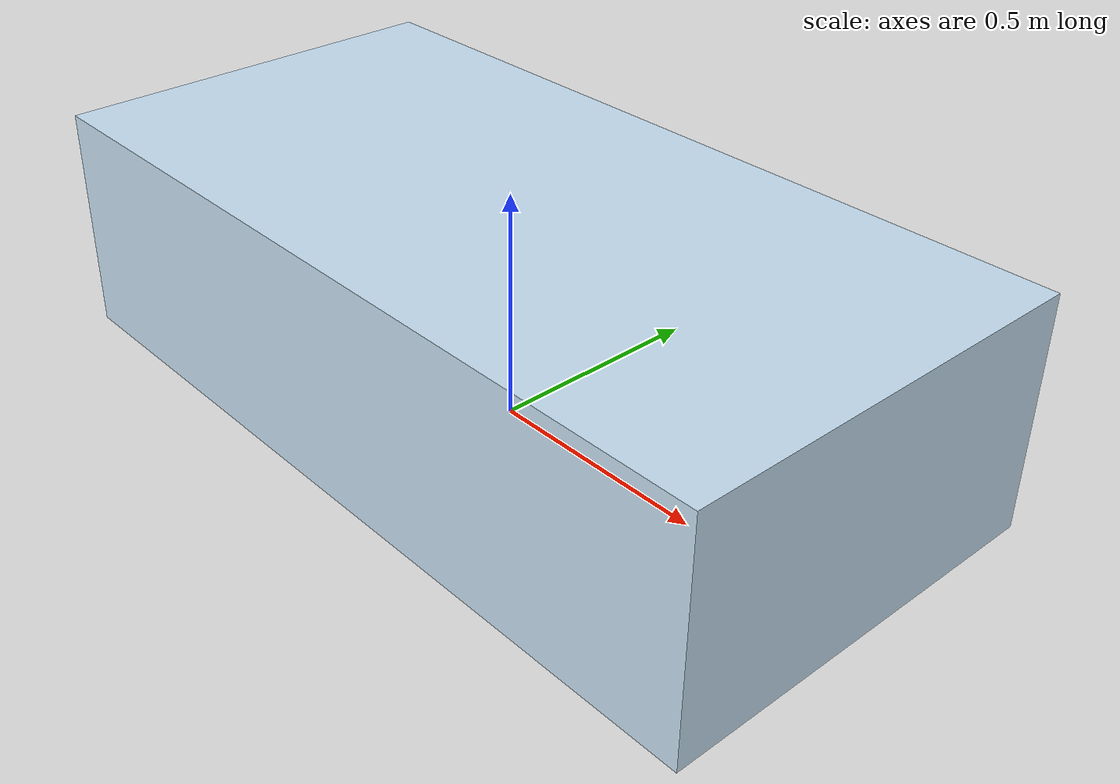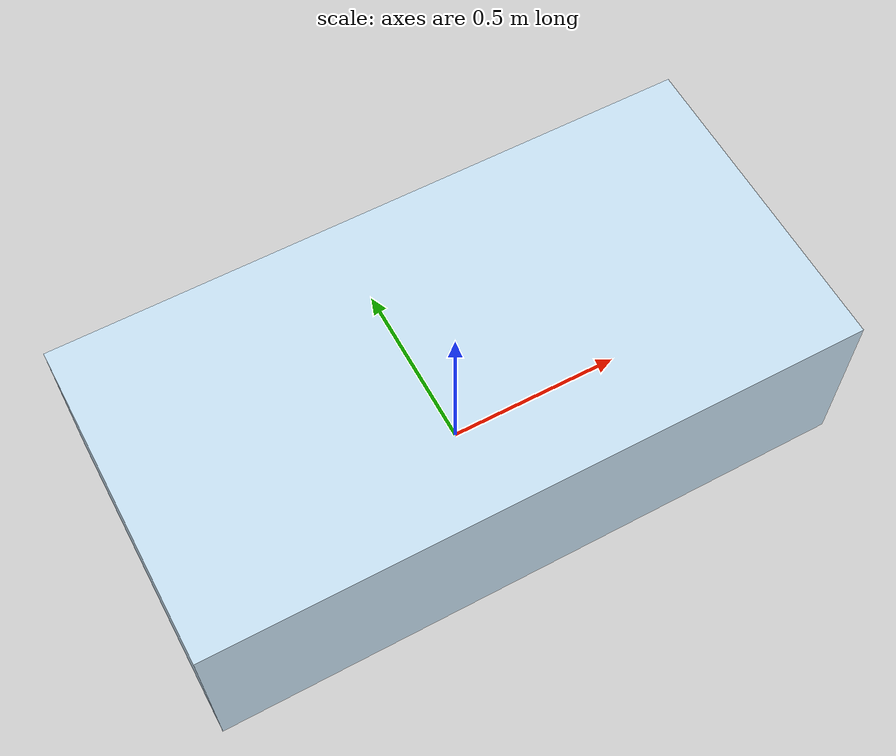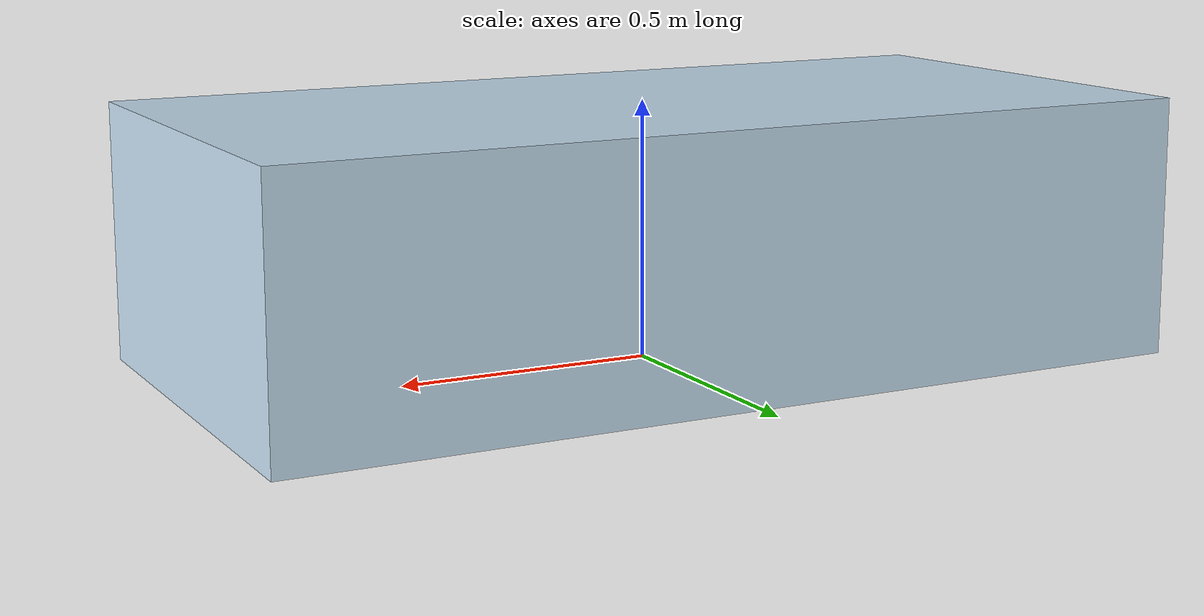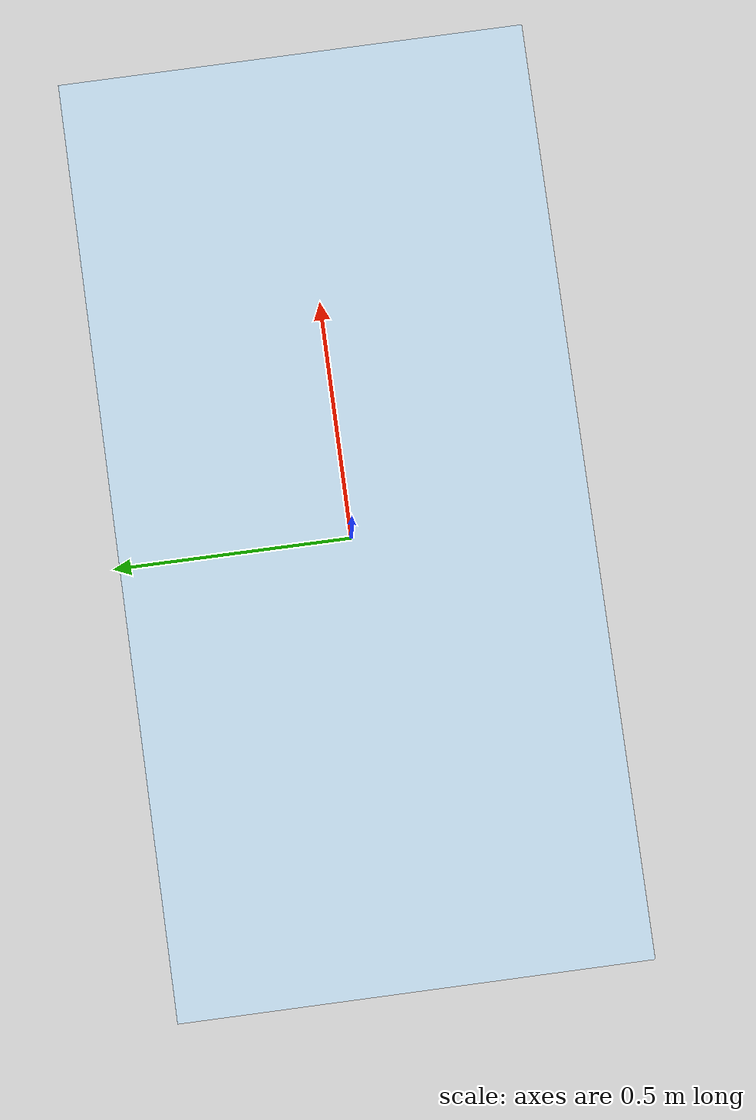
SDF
<?xml version="1.0"?>
<sdf version="1.9">
  <model name="hospital_bed">
    <static>true</static>
    <!-- Box 1.8 x 0.9 x 0.5 lifted 0.25 so the model origin sits on the floor. -->
    <link name="link">
      <collision name="collision">
        <pose>0 0 0.25 0 0 0</pose>
        <geometry><box><size>1.8 0.9 0.5</size></box></geometry>
      </collision>
      <visual name="visual">
        <pose>0 0 0.25 0 0 0</pose>
        <geometry><box><size>1.8 0.9 0.5</size></box></geometry>
        <material>
          <ambient>0.78 0.88 0.95 1</ambient>
          <diffuse>0.78 0.88 0.95 1</diffuse>
        </material>
      </visual>
    </link>
  </model>
</sdf>
